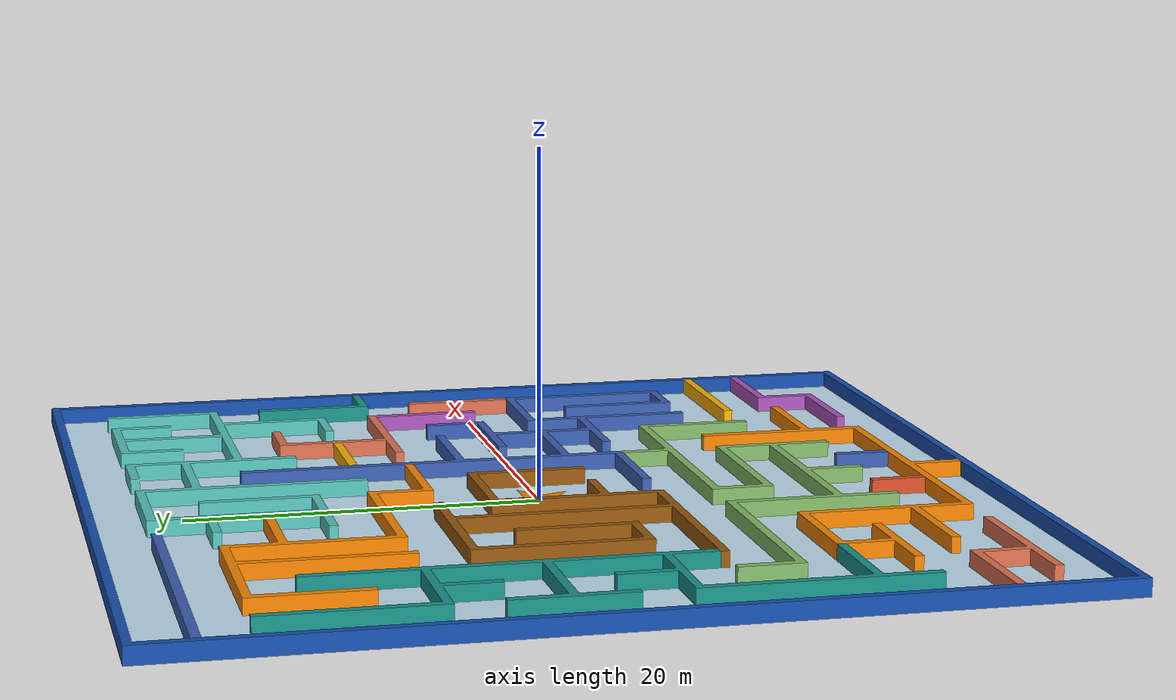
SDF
<?xml version="1.0" ?>
<!-- Generated using onshape-to-robot -->
<!-- Onshape document_id: 6c3ccb78c3fb44a0bd1989e4 -->
<sdf version="1.7">
  <model name="maze_world">
    <!-- Link part_1 -->
    <link name="part_1">
      <inertial>
        <pose>0 -0 0.5 0 0 0</pose>
        <mass>106252</mass>
        <inertia>
          <ixx>4.51748e+07</ixx>
          <ixy>-7.7797e-08</ixy>
          <ixz>3.27e-10</ixz>
          <iyy>4.51748e+07</iyy>
          <iyz>8.08e-10</iyz>
          <izz>9.03319e+07</izz>
        </inertia>
      </inertial>
      <pose>0 0 0 0 -0 0</pose>
      <!-- Part part_1 -->
      <visual name="part_1_visual_mesh_1">
        <pose relative_to="part_1">0 0 0 0 -0 0</pose>
        <geometry>
          <mesh>
            <uri>model://maze_world/meshes/part_1.stl</uri>
          </mesh>
        </geometry>
        <material>
          <ambient>0.0862745 0.317647 0.690196 1</ambient>
          <diffuse>0.0862745 0.317647 0.690196 1</diffuse>
          <specular>0.1 0.1 0.1 1</specular>
          <emissive>0 0 0 0</emissive>
        </material>
      </visual>
      <collision name="part_1_collision_mesh_2">
        <pose relative_to="part_1">0 0 0 0 -0 0</pose>
        <geometry>
          <mesh>
            <uri>model://maze_world/meshes/part_1.stl</uri>
          </mesh>
        </geometry>
      </collision>
    </link>
    <!-- Link part_2 -->
    <link name="part_2">
      <inertial>
        <pose>-6.32899 -0.179225 0.5 0 0 0</pose>
        <mass>41647.8</mass>
        <inertia>
          <ixx>730806</ixx>
          <ixy>-75930.4</ixy>
          <ixz>-3.4e-11</ixz>
          <iyy>1.03404e+06</iyy>
          <iyz>-8e-12</iyz>
          <izz>1.7579e+06</izz>
        </inertia>
      </inertial>
      <pose>0 0 0 0 -0 0</pose>
      <!-- Part part_2 -->
      <visual name="part_2_visual_mesh_1">
        <pose relative_to="part_2">0 0 0 0 -0 0</pose>
        <geometry>
          <mesh>
            <uri>model://maze_world/meshes/part_2.stl</uri>
          </mesh>
        </geometry>
        <material>
          <ambient>0.6 0.352941 0.054902 1</ambient>
          <diffuse>0.6 0.352941 0.054902 1</diffuse>
          <specular>0.1 0.1 0.1 1</specular>
          <emissive>0 0 0 0</emissive>
        </material>
      </visual>
      <collision name="part_2_collision_mesh_2">
        <pose relative_to="part_2">0 0 0 0 -0 0</pose>
        <geometry>
          <mesh>
            <uri>model://maze_world/meshes/part_2.stl</uri>
          </mesh>
        </geometry>
      </collision>
    </link>
    <!-- Link part_3 -->
    <link name="part_3">
      <inertial>
        <pose>12.5393 -2.50646 0.5 0 0 0</pose>
        <mass>51445</mass>
        <inertia>
          <ixx>2.08575e+06</ixx>
          <ixy>1.05892e+06</ixy>
          <ixz>2e-12</ixz>
          <iyy>1.76986e+06</iyy>
          <iyz>-7e-12</iyz>
          <izz>3.84704e+06</izz>
        </inertia>
      </inertial>
      <pose>0 0 0 0 -0 0</pose>
      <!-- Part part_3 -->
      <visual name="part_3_visual_mesh_1">
        <pose relative_to="part_3">0 0 0 0 -0 0</pose>
        <geometry>
          <mesh>
            <uri>model://maze_world/meshes/part_3.stl</uri>
          </mesh>
        </geometry>
        <material>
          <ambient>0.231373 0.380392 0.705882 1</ambient>
          <diffuse>0.231373 0.380392 0.705882 1</diffuse>
          <specular>0.1 0.1 0.1 1</specular>
          <emissive>0 0 0 0</emissive>
        </material>
      </visual>
      <collision name="part_3_collision_mesh_2">
        <pose relative_to="part_3">0 0 0 0 -0 0</pose>
        <geometry>
          <mesh>
            <uri>model://maze_world/meshes/part_3.stl</uri>
          </mesh>
        </geometry>
      </collision>
    </link>
    <!-- Link part_4 -->
    <link name="part_4">
      <inertial>
        <pose>8.47049 17.2964 0.5 0 0 0</pose>
        <mass>57995.5</mass>
        <inertia>
          <ixx>762791</ixx>
          <ixy>-46266.2</ixy>
          <ixz>7.4e-11</ixz>
          <iyy>4.25397e+06</iyy>
          <iyz>-4e-12</iyz>
          <izz>5.0071e+06</izz>
        </inertia>
      </inertial>
      <pose>0 0 0 0 -0 0</pose>
      <!-- Part part_4 -->
      <visual name="part_4_visual_mesh_1">
        <pose relative_to="part_4">0 0 0 0 -0 0</pose>
        <geometry>
          <mesh>
            <uri>model://maze_world/meshes/part_4.stl</uri>
          </mesh>
        </geometry>
        <material>
          <ambient>0.341176 0.776471 0.741176 1</ambient>
          <diffuse>0.341176 0.776471 0.741176 1</diffuse>
          <specular>0.1 0.1 0.1 1</specular>
          <emissive>0 0 0 0</emissive>
        </material>
      </visual>
      <collision name="part_4_collision_mesh_2">
        <pose relative_to="part_4">0 0 0 0 -0 0</pose>
        <geometry>
          <mesh>
            <uri>model://maze_world/meshes/part_4.stl</uri>
          </mesh>
        </geometry>
      </collision>
    </link>
    <!-- Link part_5 -->
    <link name="part_5">
      <inertial>
        <pose>13.6775 8.47571 0.5 0 0 0</pose>
        <mass>10236</mass>
        <inertia>
          <ixx>71104.4</ixx>
          <ixy>4397.16</ixy>
          <ixz>-0</ixz>
          <iyy>51452.3</iyy>
          <iyz>0</iyz>
          <izz>120851</izz>
        </inertia>
      </inertial>
      <pose>0 0 0 0 -0 0</pose>
      <!-- Part part_5 -->
      <visual name="part_5_visual_mesh_1">
        <pose relative_to="part_5">0 0 0 0 -0 0</pose>
        <geometry>
          <mesh>
            <uri>model://maze_world/meshes/part_5.stl</uri>
          </mesh>
        </geometry>
        <material>
          <ambient>0.87451 0.447059 0.317647 1</ambient>
          <diffuse>0.87451 0.447059 0.317647 1</diffuse>
          <specular>0.1 0.1 0.1 1</specular>
          <emissive>0 0 0 0</emissive>
        </material>
      </visual>
      <collision name="part_5_collision_mesh_2">
        <pose relative_to="part_5">0 0 0 0 -0 0</pose>
        <geometry>
          <mesh>
            <uri>model://maze_world/meshes/part_5.stl</uri>
          </mesh>
        </geometry>
      </collision>
    </link>
    <!-- Link part_6 -->
    <link name="part_6">
      <inertial>
        <pose>-2.98812 -18.2493 0.5 0 0 0</pose>
        <mass>37324.7</mass>
        <inertia>
          <ixx>445565</ixx>
          <ixy>478436</ixy>
          <ixz>-3e-12</ixz>
          <iyy>3.84442e+06</iyy>
          <iyz>4.7e-11</iyz>
          <izz>4.28376e+06</izz>
        </inertia>
      </inertial>
      <pose>0 0 0 0 -0 0</pose>
      <!-- Part part_6 -->
      <visual name="part_6_visual_mesh_1">
        <pose relative_to="part_6">0 0 0 0 -0 0</pose>
        <geometry>
          <mesh>
            <uri>model://maze_world/meshes/part_6.stl</uri>
          </mesh>
        </geometry>
        <material>
          <ambient>0.972549 0.529412 0.00392157 1</ambient>
          <diffuse>0.972549 0.529412 0.00392157 1</diffuse>
          <specular>0.1 0.1 0.1 1</specular>
          <emissive>0 0 0 0</emissive>
        </material>
      </visual>
      <collision name="part_6_collision_mesh_2">
        <pose relative_to="part_6">0 0 0 0 -0 0</pose>
        <geometry>
          <mesh>
            <uri>model://maze_world/meshes/part_6.stl</uri>
          </mesh>
        </geometry>
      </collision>
    </link>
    <!-- Link part_7 -->
    <link name="part_7">
      <inertial>
        <pose>18.7266 -20.3854 0.5 0 0 0</pose>
        <mass>8303.27</mass>
        <inertia>
          <ixx>18666.5</ixx>
          <ixy>-32932.8</ixy>
          <ixz>0</ixz>
          <iyy>89447.5</iyy>
          <iyz>-2e-12</iyz>
          <izz>106730</izz>
        </inertia>
      </inertial>
      <pose>0 0 0 0 -0 0</pose>
      <!-- Part part_7 -->
      <visual name="part_7_visual_mesh_1">
        <pose relative_to="part_7">0 0 0 0 -0 0</pose>
        <geometry>
          <mesh>
            <uri>model://maze_world/meshes/part_7.stl</uri>
          </mesh>
        </geometry>
        <material>
          <ambient>0.682353 0.333333 0.737255 1</ambient>
          <diffuse>0.682353 0.333333 0.737255 1</diffuse>
          <specular>0.1 0.1 0.1 1</specular>
          <emissive>0 0 0 0</emissive>
        </material>
      </visual>
      <collision name="part_7_collision_mesh_2">
        <pose relative_to="part_7">0 0 0 0 -0 0</pose>
        <geometry>
          <mesh>
            <uri>model://maze_world/meshes/part_7.stl</uri>
          </mesh>
        </geometry>
      </collision>
    </link>
    <!-- Link part_8 -->
    <link name="part_8">
      <inertial>
        <pose>20.2712 -15.6045 0.5 0 0 0</pose>
        <mass>4974.72</mass>
        <inertia>
          <ixx>518.2</ixx>
          <ixy>0</ixy>
          <ixz>0</ixz>
          <iyy>37495.7</iyy>
          <iyz>0</iyz>
          <izz>37184.8</izz>
        </inertia>
      </inertial>
      <pose>0 0 0 0 -0 0</pose>
      <!-- Part part_8 -->
      <visual name="part_8_visual_mesh_1">
        <pose relative_to="part_8">0 0 0 0 -0 0</pose>
        <geometry>
          <mesh>
            <uri>model://maze_world/meshes/part_8.stl</uri>
          </mesh>
        </geometry>
        <material>
          <ambient>0.980392 0.713725 0.00392157 1</ambient>
          <diffuse>0.980392 0.713725 0.00392157 1</diffuse>
          <specular>0.1 0.1 0.1 1</specular>
          <emissive>0 0 0 0</emissive>
        </material>
      </visual>
      <collision name="part_8_collision_mesh_2">
        <pose relative_to="part_8">0 0 0 0 -0 0</pose>
        <geometry>
          <mesh>
            <uri>model://maze_world/meshes/part_8.stl</uri>
          </mesh>
        </geometry>
      </collision>
    </link>
    <!-- Link part_9 -->
    <link name="part_9">
      <inertial>
        <pose>22.4507 8.611 0.5 0 0 0</pose>
        <mass>5137.43</mass>
        <inertia>
          <ixx>25379.2</ixx>
          <ixy>5393.09</ixy>
          <ixz>-0</ixz>
          <iyy>4196.7</iyy>
          <iyz>0</iyz>
          <izz>28719.6</izz>
        </inertia>
      </inertial>
      <pose>0 0 0 0 -0 0</pose>
      <!-- Part part_9 -->
      <visual name="part_9_visual_mesh_1">
        <pose relative_to="part_9">0 0 0 0 -0 0</pose>
        <geometry>
          <mesh>
            <uri>model://maze_world/meshes/part_9.stl</uri>
          </mesh>
        </geometry>
        <material>
          <ambient>0.0941176 0.580392 0.545098 1</ambient>
          <diffuse>0.0941176 0.580392 0.545098 1</diffuse>
          <specular>0.1 0.1 0.1 1</specular>
          <emissive>0 0 0 0</emissive>
        </material>
      </visual>
      <collision name="part_9_collision_mesh_2">
        <pose relative_to="part_9">0 0 0 0 -0 0</pose>
        <geometry>
          <mesh>
            <uri>model://maze_world/meshes/part_9.stl</uri>
          </mesh>
        </geometry>
      </collision>
    </link>
    <!-- Link part_10 -->
    <link name="part_10">
      <inertial>
        <pose>-19.0305 -20.6184 0.5 0 0 0</pose>
        <mass>9990.82</mass>
        <inertia>
          <ixx>22225.5</ixx>
          <ixy>28679.6</ixy>
          <ixz>0</ixz>
          <iyy>96050.5</iyy>
          <iyz>-0</iyz>
          <izz>116611</izz>
        </inertia>
      </inertial>
      <pose>0 0 0 0 -0 0</pose>
      <!-- Part part_10 -->
      <visual name="part_10_visual_mesh_1">
        <pose relative_to="part_10">0 0 0 0 -0 0</pose>
        <geometry>
          <mesh>
            <uri>model://maze_world/meshes/part_10.stl</uri>
          </mesh>
        </geometry>
        <material>
          <ambient>0.87451 0.447059 0.317647 1</ambient>
          <diffuse>0.87451 0.447059 0.317647 1</diffuse>
          <specular>0.1 0.1 0.1 1</specular>
          <emissive>0 0 0 0</emissive>
        </material>
      </visual>
      <collision name="part_10_collision_mesh_2">
        <pose relative_to="part_10">0 0 0 0 -0 0</pose>
        <geometry>
          <mesh>
            <uri>model://maze_world/meshes/part_10.stl</uri>
          </mesh>
        </geometry>
      </collision>
    </link>
    <!-- Link part_11 -->
    <link name="part_11">
      <inertial>
        <pose>-15.5019 22.0406 0.5 0 0 0</pose>
        <mass>10427</mass>
        <inertia>
          <ixx>1105.48</ixx>
          <ixy>-6.4e-11</ixy>
          <ixz>0</ixz>
          <iyy>314421</iyy>
          <iyz>0</iyz>
          <izz>313789</izz>
        </inertia>
      </inertial>
      <pose>0 0 0 0 -0 0</pose>
      <!-- Part part_11 -->
      <visual name="part_11_visual_mesh_1">
        <pose relative_to="part_11">0 0 0 0 -0 0</pose>
        <geometry>
          <mesh>
            <uri>model://maze_world/meshes/part_11.stl</uri>
          </mesh>
        </geometry>
        <material>
          <ambient>0.231373 0.380392 0.705882 1</ambient>
          <diffuse>0.231373 0.380392 0.705882 1</diffuse>
          <specular>0.1 0.1 0.1 1</specular>
          <emissive>0 0 0 0</emissive>
        </material>
      </visual>
      <collision name="part_11_collision_mesh_2">
        <pose relative_to="part_11">0 0 0 0 -0 0</pose>
        <geometry>
          <mesh>
            <uri>model://maze_world/meshes/part_11.stl</uri>
          </mesh>
        </geometry>
      </collision>
    </link>
    <!-- Link part_12 -->
    <link name="part_12">
      <inertial>
        <pose>-0.713109 -12.1288 0.5 0 0 0</pose>
        <mass>44649.8</mass>
        <inertia>
          <ixx>443002</ixx>
          <ixy>276084</ixy>
          <ixz>4e-12</ixz>
          <iyy>3.17434e+06</iyy>
          <iyz>2.7e-11</iyz>
          <izz>3.6099e+06</izz>
        </inertia>
      </inertial>
      <pose>0 0 0 0 -0 0</pose>
      <!-- Part part_12 -->
      <visual name="part_12_visual_mesh_1">
        <pose relative_to="part_12">0 0 0 0 -0 0</pose>
        <geometry>
          <mesh>
            <uri>model://maze_world/meshes/part_12.stl</uri>
          </mesh>
        </geometry>
        <material>
          <ambient>0.513725 0.737255 0.407843 1</ambient>
          <diffuse>0.513725 0.737255 0.407843 1</diffuse>
          <specular>0.1 0.1 0.1 1</specular>
          <emissive>0 0 0 0</emissive>
        </material>
      </visual>
      <collision name="part_12_collision_mesh_2">
        <pose relative_to="part_12">0 0 0 0 -0 0</pose>
        <geometry>
          <mesh>
            <uri>model://maze_world/meshes/part_12.stl</uri>
          </mesh>
        </geometry>
      </collision>
    </link>
    <!-- Link part_13 -->
    <link name="part_13">
      <inertial>
        <pose>21.9845 0.333722 0.5 0 0 0</pose>
        <mass>3295.41</mass>
        <inertia>
          <ixx>11053.5</ixx>
          <ixy>1e-12</ixy>
          <ixz>0</ixz>
          <iyy>343.272</iyy>
          <iyz>0</iyz>
          <izz>10847.6</izz>
        </inertia>
      </inertial>
      <pose>0 0 0 0 -0 0</pose>
      <!-- Part part_13 -->
      <visual name="part_13_visual_mesh_1">
        <pose relative_to="part_13">0 0 0 0 -0 0</pose>
        <geometry>
          <mesh>
            <uri>model://maze_world/meshes/part_13.stl</uri>
          </mesh>
        </geometry>
        <material>
          <ambient>0.87451 0.447059 0.317647 1</ambient>
          <diffuse>0.87451 0.447059 0.317647 1</diffuse>
          <specular>0.1 0.1 0.1 1</specular>
          <emissive>0 0 0 0</emissive>
        </material>
      </visual>
      <collision name="part_13_collision_mesh_2">
        <pose relative_to="part_13">0 0 0 0 -0 0</pose>
        <geometry>
          <mesh>
            <uri>model://maze_world/meshes/part_13.stl</uri>
          </mesh>
        </geometry>
      </collision>
    </link>
    <!-- Link part_14 -->
    <link name="part_14">
      <inertial>
        <pose>-8.82418 13.3104 0.5 0 0 0</pose>
        <mass>31106.6</mass>
        <inertia>
          <ixx>561393</ixx>
          <ixy>642372</ixy>
          <ixz>3e-12</ixz>
          <iyy>1.3284e+06</iyy>
          <iyz>2e-12</iyz>
          <izz>1.88461e+06</izz>
        </inertia>
      </inertial>
      <pose>0 0 0 0 -0 0</pose>
      <!-- Part part_14 -->
      <visual name="part_14_visual_mesh_1">
        <pose relative_to="part_14">0 0 0 0 -0 0</pose>
        <geometry>
          <mesh>
            <uri>model://maze_world/meshes/part_14.stl</uri>
          </mesh>
        </geometry>
        <material>
          <ambient>0.972549 0.529412 0.00392157 1</ambient>
          <diffuse>0.972549 0.529412 0.00392157 1</diffuse>
          <specular>0.1 0.1 0.1 1</specular>
          <emissive>0 0 0 0</emissive>
        </material>
      </visual>
      <collision name="part_14_collision_mesh_2">
        <pose relative_to="part_14">0 0 0 0 -0 0</pose>
        <geometry>
          <mesh>
            <uri>model://maze_world/meshes/part_14.stl</uri>
          </mesh>
        </geometry>
      </collision>
    </link>
    <!-- Link part_15 -->
    <link name="part_15">
      <inertial>
        <pose>18.8558 2.97596 0.5 0 0 0</pose>
        <mass>3266.09</mass>
        <inertia>
          <ixx>10766</ixx>
          <ixy>-0</ixy>
          <ixz>0</ixz>
          <iyy>340.218</iyy>
          <iyz>0</iyz>
          <izz>10561.8</izz>
        </inertia>
      </inertial>
      <pose>0 0 0 0 -0 0</pose>
      <!-- Part part_15 -->
      <visual name="part_15_visual_mesh_1">
        <pose relative_to="part_15">0 0 0 0 -0 0</pose>
        <geometry>
          <mesh>
            <uri>model://maze_world/meshes/part_15.stl</uri>
          </mesh>
        </geometry>
        <material>
          <ambient>0.682353 0.333333 0.737255 1</ambient>
          <diffuse>0.682353 0.333333 0.737255 1</diffuse>
          <specular>0.1 0.1 0.1 1</specular>
          <emissive>0 0 0 0</emissive>
        </material>
      </visual>
      <collision name="part_15_collision_mesh_2">
        <pose relative_to="part_15">0 0 0 0 -0 0</pose>
        <geometry>
          <mesh>
            <uri>model://maze_world/meshes/part_15.stl</uri>
          </mesh>
        </geometry>
      </collision>
    </link>
    <!-- Link part_16 -->
    <link name="part_16">
      <inertial>
        <pose>9.47441 9.50302 0.5 0 0 0</pose>
        <mass>3070.46</mass>
        <inertia>
          <ixx>321.571</ixx>
          <ixy>-2e-12</ixy>
          <ixz>0</ixz>
          <iyy>8744.79</iyy>
          <iyz>0</iyz>
          <izz>8554.62</izz>
        </inertia>
      </inertial>
      <pose>0 0 0 0 -0 0</pose>
      <!-- Part part_16 -->
      <visual name="part_16_visual_mesh_1">
        <pose relative_to="part_16">0 0 0 0 -0 0</pose>
        <geometry>
          <mesh>
            <uri>model://maze_world/meshes/part_16.stl</uri>
          </mesh>
        </geometry>
        <material>
          <ambient>0.980392 0.713725 0.00392157 1</ambient>
          <diffuse>0.980392 0.713725 0.00392157 1</diffuse>
          <specular>0.1 0.1 0.1 1</specular>
          <emissive>0 0 0 0</emissive>
        </material>
      </visual>
      <collision name="part_16_collision_mesh_2">
        <pose relative_to="part_16">0 0 0 0 -0 0</pose>
        <geometry>
          <mesh>
            <uri>model://maze_world/meshes/part_16.stl</uri>
          </mesh>
        </geometry>
      </collision>
    </link>
    <!-- Link part_17 -->
    <link name="part_17">
      <inertial>
        <pose>-19.0997 1.95626 0.5 0 0 0</pose>
        <mass>43248.5</mass>
        <inertia>
          <ixx>3.3823e+06</ixx>
          <ixy>-146889</ixy>
          <ixz>-1e-12</ixz>
          <iyy>311497</iyy>
          <iyz>-4e-12</iyz>
          <izz>3.68659e+06</izz>
        </inertia>
      </inertial>
      <pose>0 0 0 0 -0 0</pose>
      <!-- Part part_17 -->
      <visual name="part_17_visual_mesh_1">
        <pose relative_to="part_17">0 0 0 0 -0 0</pose>
        <geometry>
          <mesh>
            <uri>model://maze_world/meshes/part_17.stl</uri>
          </mesh>
        </geometry>
        <material>
          <ambient>0.0941176 0.580392 0.545098 1</ambient>
          <diffuse>0.0941176 0.580392 0.545098 1</diffuse>
          <specular>0.1 0.1 0.1 1</specular>
          <emissive>0 0 0 0</emissive>
        </material>
      </visual>
      <collision name="part_17_collision_mesh_2">
        <pose relative_to="part_17">0 0 0 0 -0 0</pose>
        <geometry>
          <mesh>
            <uri>model://maze_world/meshes/part_17.stl</uri>
          </mesh>
        </geometry>
      </collision>
    </link>
    <!-- Link part_18 -->
    <link name="part_18">
      <inertial>
        <pose>-3.13254 -20.086 0.5 0 0 0</pose>
        <mass>1651.66</mass>
        <inertia>
          <ixx>1494.74</ixx>
          <ixy>-0</ixy>
          <ixz>0</ixz>
          <iyy>172.048</iyy>
          <iyz>-0</iyz>
          <izz>1391.51</izz>
        </inertia>
      </inertial>
      <pose>0 0 0 0 -0 0</pose>
      <!-- Part part_18 -->
      <visual name="part_18_visual_mesh_1">
        <pose relative_to="part_18">0 0 0 0 -0 0</pose>
        <geometry>
          <mesh>
            <uri>model://maze_world/meshes/part_18.stl</uri>
          </mesh>
        </geometry>
        <material>
          <ambient>0.866667 0.321569 0.156863 1</ambient>
          <diffuse>0.866667 0.321569 0.156863 1</diffuse>
          <specular>0.1 0.1 0.1 1</specular>
          <emissive>0 0 0 0</emissive>
        </material>
      </visual>
      <collision name="part_18_collision_mesh_2">
        <pose relative_to="part_18">0 0 0 0 -0 0</pose>
        <geometry>
          <mesh>
            <uri>model://maze_world/meshes/part_18.stl</uri>
          </mesh>
        </geometry>
      </collision>
    </link>
    <!-- Link part_19 -->
    <link name="part_19">
      <inertial>
        <pose>3.17611 -20.086 0.5 0 0 0</pose>
        <mass>1651.66</mass>
        <inertia>
          <ixx>1494.74</ixx>
          <ixy>0</ixy>
          <ixz>0</ixz>
          <iyy>172.048</iyy>
          <iyz>0</iyz>
          <izz>1391.51</izz>
        </inertia>
      </inertial>
      <pose>0 0 0 0 -0 0</pose>
      <!-- Part part_19 -->
      <visual name="part_19_visual_mesh_1">
        <pose relative_to="part_19">0 0 0 0 -0 0</pose>
        <geometry>
          <mesh>
            <uri>model://maze_world/meshes/part_19.stl</uri>
          </mesh>
        </geometry>
        <material>
          <ambient>0.231373 0.380392 0.705882 1</ambient>
          <diffuse>0.231373 0.380392 0.705882 1</diffuse>
          <specular>0.1 0.1 0.1 1</specular>
          <emissive>0 0 0 0</emissive>
        </material>
      </visual>
      <collision name="part_19_collision_mesh_2">
        <pose relative_to="part_19">0 0 0 0 -0 0</pose>
        <geometry>
          <mesh>
            <uri>model://maze_world/meshes/part_19.stl</uri>
          </mesh>
        </geometry>
      </collision>
    </link>
    <!-- Link part_20 -->
    <link name="part_20">
      <inertial>
        <pose>0.0213181 -0.0107508 0.05 0 0 0</pose>
        <mass>225362</mass>
        <inertia>
          <ixx>4.80288e+07</ixx>
          <ixy>16287.8</ixy>
          <ixz>-2e-12</ixz>
          <iyy>4.80504e+07</iyy>
          <iyz>-3e-12</iyz>
          <izz>9.60788e+07</izz>
        </inertia>
      </inertial>
      <pose>0 0 0 0 -0 0</pose>
      <!-- Part part_20 -->
      <visual name="part_20_visual_mesh_1">
        <pose relative_to="part_20">0 0 0 0 -0 0</pose>
        <geometry>
          <mesh>
            <uri>model://maze_world/meshes/part_20.stl</uri>
          </mesh>
        </geometry>
        <material>
          <ambient>0.768627 0.886275 0.952941 1</ambient>
          <diffuse>0.768627 0.886275 0.952941 1</diffuse>
          <specular>0.1 0.1 0.1 1</specular>
          <emissive>0 0 0 0</emissive>
        </material>
      </visual>
      <collision name="part_20_collision_mesh_2">
        <pose relative_to="part_20">0 0 0 0 -0 0</pose>
        <geometry>
          <mesh>
            <uri>model://maze_world/meshes/part_20.stl</uri>
          </mesh>
        </geometry>
      </collision>
    </link>
    <!-- Link part_21 -->
    <link name="part_21">
      <inertial>
        <pose>0 0 0.05 0 0 0</pose>
        <mass>82.6239</mass>
        <inertia>
          <ixx>5.23285</ixx>
          <ixy>0</ixy>
          <ixz>0</ixz>
          <iyy>5.23285</iyy>
          <iyz>0</iyz>
          <izz>10.328</izz>
        </inertia>
      </inertial>
      <pose>0 0 0 0 -0 0</pose>
      <!-- Part part_21 -->
      <visual name="part_21_visual_mesh_1">
        <pose relative_to="part_21">0 0 0 0 -0 0</pose>
        <geometry>
          <mesh>
            <uri>model://maze_world/meshes/part_21.stl</uri>
          </mesh>
        </geometry>
        <material>
          <ambient>0.768627 0.886275 0.952941 1</ambient>
          <diffuse>0.768627 0.886275 0.952941 1</diffuse>
          <specular>0.1 0.1 0.1 1</specular>
          <emissive>0 0 0 0</emissive>
        </material>
      </visual>
      <collision name="part_21_collision_mesh_2">
        <pose relative_to="part_21">0 0 0 0 -0 0</pose>
        <geometry>
          <mesh>
            <uri>model://maze_world/meshes/part_21.stl</uri>
          </mesh>
        </geometry>
      </collision>
    </link>
    <!-- Link part_22 -->
    <link name="part_22">
      <inertial>
        <pose>0.232827 -0.0711822 0.05 0 0 0</pose>
        <mass>516.884</mass>
        <inertia>
          <ixx>469.754</ixx>
          <ixy>-57.4942</ixy>
          <ixz>0</ixz>
          <iyy>299.276</iyy>
          <iyz>-0</iyz>
          <izz>768.169</izz>
        </inertia>
      </inertial>
      <pose>0 0 0 0 -0 0</pose>
      <!-- Part part_22 -->
      <visual name="part_22_visual_mesh_1">
        <pose relative_to="part_22">0 0 0 0 -0 0</pose>
        <geometry>
          <mesh>
            <uri>model://maze_world/meshes/part_22.stl</uri>
          </mesh>
        </geometry>
        <material>
          <ambient>0.972549 0.529412 0.00392157 1</ambient>
          <diffuse>0.972549 0.529412 0.00392157 1</diffuse>
          <specular>0.1 0.1 0.1 1</specular>
          <emissive>0 0 0 0</emissive>
        </material>
      </visual>
      <collision name="part_22_collision_mesh_2">
        <pose relative_to="part_22">0 0 0 0 -0 0</pose>
        <geometry>
          <mesh>
            <uri>model://maze_world/meshes/part_22.stl</uri>
          </mesh>
        </geometry>
      </collision>
    </link>
    <!-- Link part_23 -->
    <link name="part_23">
      <inertial>
        <pose>-1.25182 0.38272 0.05 0 0 0</pose>
        <mass>96.1356</mass>
        <inertia>
          <ixx>5.71495</ixx>
          <ixy>2.86969</ixy>
          <ixz>0</ixz>
          <iyy>14.2239</iyy>
          <iyz>0</iyz>
          <izz>19.7787</izz>
        </inertia>
      </inertial>
      <pose>0 0 0 0 -0 0</pose>
      <!-- Part part_23 -->
      <visual name="part_23_visual_mesh_1">
        <pose relative_to="part_23">0 0 0 0 -0 0</pose>
        <geometry>
          <mesh>
            <uri>model://maze_world/meshes/part_23.stl</uri>
          </mesh>
        </geometry>
        <material>
          <ambient>0.729412 0.25098 0.105882 1</ambient>
          <diffuse>0.729412 0.25098 0.105882 1</diffuse>
          <specular>0.1 0.1 0.1 1</specular>
          <emissive>0 0 0 0</emissive>
        </material>
      </visual>
      <collision name="part_23_collision_mesh_2">
        <pose relative_to="part_23">0 0 0 0 -0 0</pose>
        <geometry>
          <mesh>
            <uri>model://maze_world/meshes/part_23.stl</uri>
          </mesh>
        </geometry>
      </collision>
    </link>
  </model>
</sdf>
